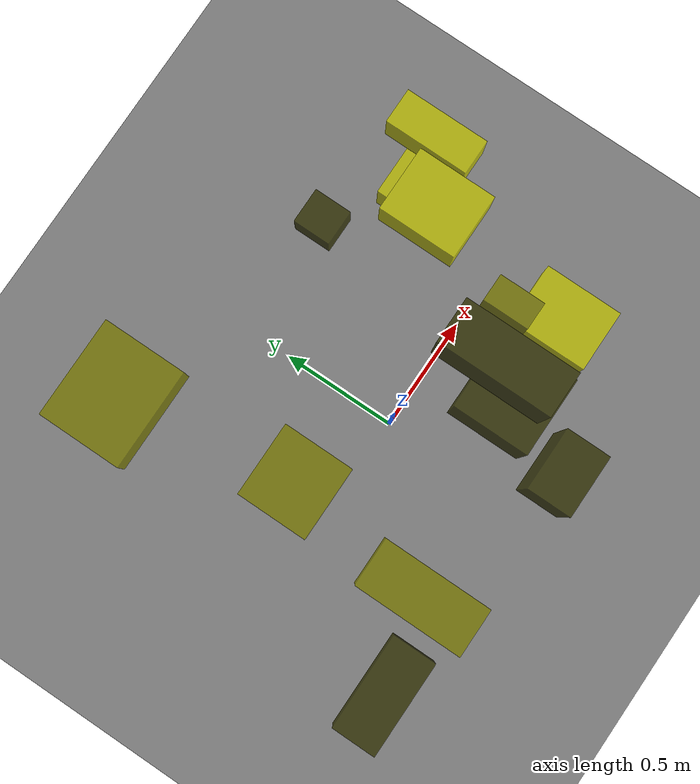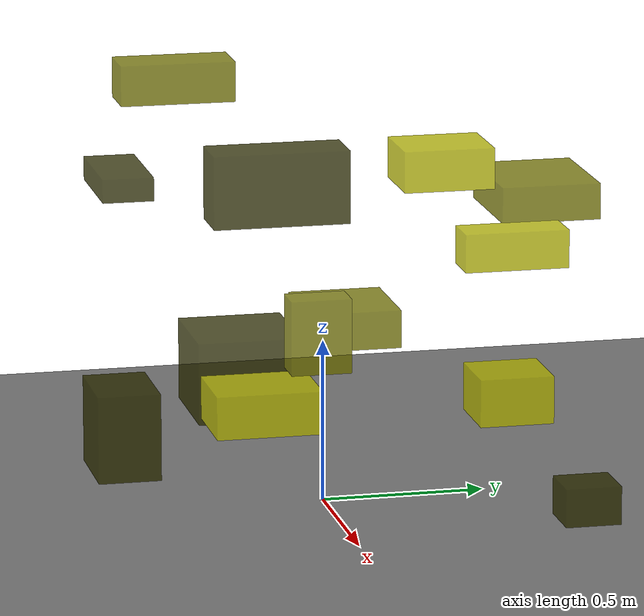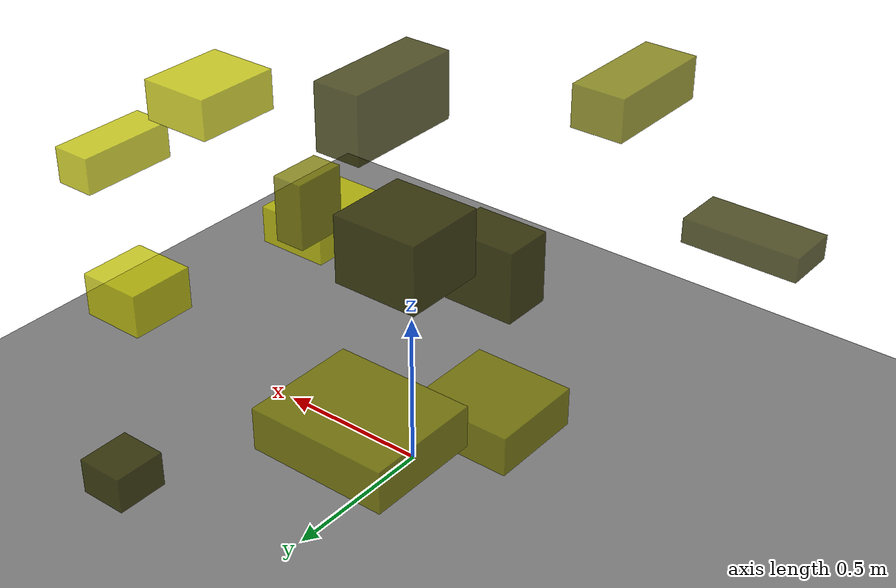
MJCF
<?xml version="1.0"?>
<mujoco model="obstacle_scene">
  <compiler angle="radian" coordinate="local"/>
  <option timestep="0.001" gravity="0 0 -9.81"/>

  <asset>
    <material name="obstacle_mat" rgba="0.8 0.8 0.0 0.8"/>
    <material name="ground_mat" rgba="0.5 0.5 0.5 1"/>
  </asset>

  <worldbody>
    <!-- Ground plane -->
    <geom name="ground" type="plane" size="3 3 0.1" material="ground_mat"/>

    <!-- Obstacles -->
    <body name="obstacle_0" pos="0.180910 -0.651075 0.315705">
      <geom name="obs_0" type="box" size="0.133708 0.093817 0.131698" rgba="0.2 0.2 0.0 0.8"/>
    </body>
    <body name="obstacle_1" pos="-0.408909 0.158475 0.453594">
      <geom name="obs_1" type="box" size="0.152815 0.145926 0.059398" rgba="0.5 0.5 0.0 0.8"/>
    </body>
    <body name="obstacle_2" pos="0.516795 0.238875 1.152863">
      <geom name="obs_2" type="box" size="0.110188 0.133014 0.060482" rgba="0.8 0.8 0.0 0.8"/>
    </body>
    <body name="obstacle_3" pos="0.282396 -0.313483 0.504703">
      <geom name="obs_3" type="box" size="0.159873 0.153867 0.122543" rgba="0.2 0.2 0.0 0.8"/>
    </body>
    <body name="obstacle_4" pos="-0.470657 -0.364291 1.228636">
      <geom name="obs_4" type="box" size="0.079352 0.177246 0.062269" rgba="0.5 0.5 0.0 0.8"/>
    </body>
    <body name="obstacle_5" pos="0.771588 0.388484 0.954413">
      <geom name="obs_5" type="box" size="0.062756 0.152120 0.055866" rgba="0.8 0.8 0.0 0.8"/>
    </body>
    <body name="obstacle_6" pos="0.260358 -0.194897 1.051233">
      <geom name="obs_6" type="box" size="0.080524 0.204100 0.109475" rgba="0.2 0.2 0.0 0.8"/>
    </body>
    <body name="obstacle_7" pos="0.512767 -0.126330 0.659545">
      <geom name="obs_7" type="box" size="0.053103 0.089746 0.111041" rgba="0.5 0.5 0.0 0.8"/>
    </body>
    <body name="obstacle_8" pos="0.627676 -0.318176 0.485428">
      <geom name="obs_8" type="box" size="0.122861 0.155567 0.063574" rgba="0.8 0.8 0.0 0.8"/>
    </body>
    <body name="obstacle_9" pos="-0.808348 -0.479936 0.847398">
      <geom name="obs_9" type="box" size="0.175036 0.080624 0.037324" rgba="0.2 0.2 0.0 0.8"/>
    </body>
    <body name="obstacle_10" pos="-0.505394 0.797701 0.812606">
      <geom name="obs_10" type="box" size="0.188808 0.156415 0.056805" rgba="0.5 0.5 0.0 0.8"/>
    </body>
    <body name="obstacle_11" pos="0.730261 0.391586 0.507828">
      <geom name="obs_11" type="box" size="0.105883 0.108843 0.070290" rgba="0.8 0.8 0.0 0.8"/>
    </body>
    <body name="obstacle_12" pos="0.528759 0.687965 0.106019">
      <geom name="obs_12" type="box" size="0.078717 0.084401 0.058650" rgba="0.2 0.2 0.0 0.8"/>
    </body>
  </worldbody>
</mujoco>
